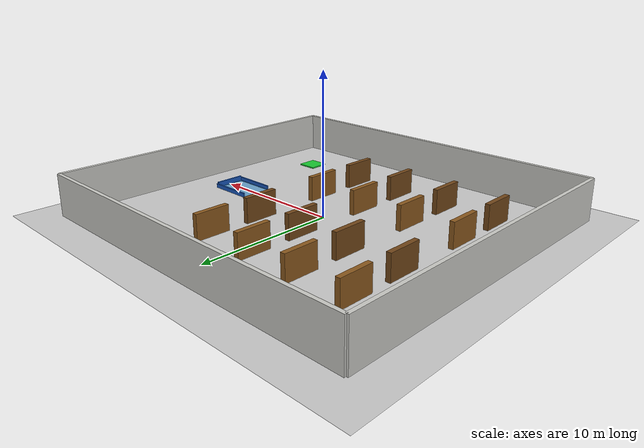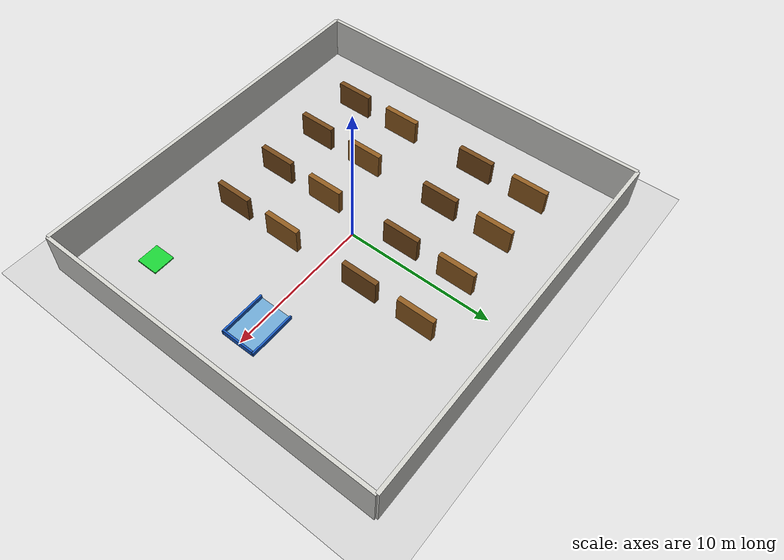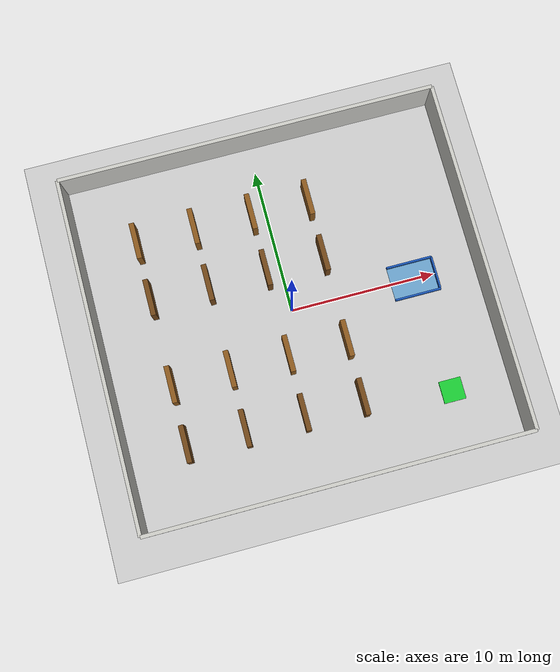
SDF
<?xml version="1.0"?>
<sdf version="1.6">
  <world name="agv_warehouse">

    <physics type="ode">
      <real_time_update_rate>1000.0</real_time_update_rate>
      <max_step_size>0.001</max_step_size>
      <real_time_factor>1</real_time_factor>
      <ode>
        <solver>
          <type>quick</type>
          <iters>150</iters>
          <precon_iters>0</precon_iters>
          <sor>1.400000</sor>
          <use_dynamic_moi_rescaling>1</use_dynamic_moi_rescaling>
        </solver>
      </ode>
    </physics>

    <scene>
      <ambient>0.6 0.6 0.6 1</ambient>
      <background>0.7 0.7 0.7 1</background>
      <shadows>true</shadows>
    </scene>

    <light name="sun_main" type="directional">
      <cast_shadows>true</cast_shadows>
      <pose>0 0 20 0 0 0</pose>
      <diffuse>0.9 0.9 0.9 1</diffuse>
      <specular>0.3 0.3 0.3 1</specular>
      <attenuation><range>1000</range><constant>0.9</constant><linear>0.01</linear><quadratic>0.001</quadratic></attenuation>
      <direction>-0.4 0.2 -0.9</direction>
    </light>

    <light name="light_1" type="point">
      <pose>0 0 8 0 0 0</pose>
      <diffuse>0.7 0.7 0.7 1</diffuse>
      <specular>0.1 0.1 0.1 1</specular>
      <attenuation><range>15</range><constant>0.5</constant><linear>0.01</linear><quadratic>0.001</quadratic></attenuation>
    </light>

    <!-- 地面 -->
    <model name="ground_plane">
      <static>true</static>
      <link name="link">
        <collision name="collision">
          <geometry><plane><normal>0 0 1</normal><size>50 50</size></plane></geometry>
          <surface><friction><ode><mu>100</mu><mu2>50</mu2></ode></friction></surface>
        </collision>
        <visual name="visual">
          <cast_shadows>false</cast_shadows>
          <geometry><plane><normal>0 0 1</normal><size>50 50</size></plane></geometry>
          <material>
            <script>
              <uri>file://media/materials/scripts/gazebo.material</uri>
              <name>Gazebo/Grey</name>
            </script>
          </material>
        </visual>
      </link>
    </model>

    <!-- 四面墙 -->
    <model name="wall_north">
      <static>true</static><pose>0 12 1.5 0 0 0</pose>
      <link name="link">
        <collision name="c"><geometry><box><size>26 0.25 3.0</size></box></geometry></collision>
        <visual name="v"><geometry><box><size>26 0.25 3.0</size></box></geometry>
          <material><ambient>0.8 0.8 0.78 1</ambient></material></visual>
      </link>
    </model>
    <model name="wall_south">
      <static>true</static><pose>0 -12 1.5 0 0 0</pose>
      <link name="link">
        <collision name="c"><geometry><box><size>26 0.25 3.0</size></box></geometry></collision>
        <visual name="v"><geometry><box><size>26 0.25 3.0</size></box></geometry>
          <material><ambient>0.8 0.8 0.78 1</ambient></material></visual>
      </link>
    </model>
    <model name="wall_east">
      <static>true</static><pose>13 0 1.5 0 0 1.5708</pose>
      <link name="link">
        <collision name="c"><geometry><box><size>24 0.25 3.0</size></box></geometry></collision>
        <visual name="v"><geometry><box><size>24 0.25 3.0</size></box></geometry>
          <material><ambient>0.8 0.8 0.78 1</ambient></material></visual>
      </link>
    </model>
    <model name="wall_west">
      <static>true</static><pose>-13 0 1.5 0 0 1.5708</pose>
      <link name="link">
        <collision name="c"><geometry><box><size>24 0.25 3.0</size></box></geometry></collision>
        <visual name="v"><geometry><box><size>24 0.25 3.0</size></box></geometry>
          <material><ambient>0.8 0.8 0.78 1</ambient></material></visual>
      </link>
    </model>

    <!-- ===== 货架组（复现截图中的密集货架布局）===== -->
    <!-- 货架宏: 每排4个货架单元，共4排 -->

    <!-- 排A: y=7 -->
    <model name="shelf_A1"><static>true</static><pose>-9 7 0.9 0 0 0</pose>
      <link name="link">
        <collision name="c"><geometry><box><size>0.35 2.5 1.8</size></box></geometry></collision>
        <visual name="v"><geometry><box><size>0.35 2.5 1.8</size></box></geometry>
          <material><ambient>0.55 0.35 0.12 1</ambient></material></visual>
      </link></model>
    <model name="shelf_A2"><static>true</static><pose>-5 7 0.9 0 0 0</pose>
      <link name="link">
        <collision name="c"><geometry><box><size>0.35 2.5 1.8</size></box></geometry></collision>
        <visual name="v"><geometry><box><size>0.35 2.5 1.8</size></box></geometry>
          <material><ambient>0.55 0.35 0.12 1</ambient></material></visual>
      </link></model>
    <model name="shelf_A3"><static>true</static><pose>-1 7 0.9 0 0 0</pose>
      <link name="link">
        <collision name="c"><geometry><box><size>0.35 2.5 1.8</size></box></geometry></collision>
        <visual name="v"><geometry><box><size>0.35 2.5 1.8</size></box></geometry>
          <material><ambient>0.55 0.35 0.12 1</ambient></material></visual>
      </link></model>
    <model name="shelf_A4"><static>true</static><pose>3 7 0.9 0 0 0</pose>
      <link name="link">
        <collision name="c"><geometry><box><size>0.35 2.5 1.8</size></box></geometry></collision>
        <visual name="v"><geometry><box><size>0.35 2.5 1.8</size></box></geometry>
          <material><ambient>0.55 0.35 0.12 1</ambient></material></visual>
      </link></model>

    <!-- 排B: y=3 -->
    <model name="shelf_B1"><static>true</static><pose>-9 3 0.9 0 0 0</pose>
      <link name="link">
        <collision name="c"><geometry><box><size>0.35 2.5 1.8</size></box></geometry></collision>
        <visual name="v"><geometry><box><size>0.35 2.5 1.8</size></box></geometry>
          <material><ambient>0.45 0.28 0.10 1</ambient></material></visual>
      </link></model>
    <model name="shelf_B2"><static>true</static><pose>-5 3 0.9 0 0 0</pose>
      <link name="link">
        <collision name="c"><geometry><box><size>0.35 2.5 1.8</size></box></geometry></collision>
        <visual name="v"><geometry><box><size>0.35 2.5 1.8</size></box></geometry>
          <material><ambient>0.45 0.28 0.10 1</ambient></material></visual>
      </link></model>
    <model name="shelf_B3"><static>true</static><pose>-1 3 0.9 0 0 0</pose>
      <link name="link">
        <collision name="c"><geometry><box><size>0.35 2.5 1.8</size></box></geometry></collision>
        <visual name="v"><geometry><box><size>0.35 2.5 1.8</size></box></geometry>
          <material><ambient>0.45 0.28 0.10 1</ambient></material></visual>
      </link></model>
    <model name="shelf_B4"><static>true</static><pose>3 3 0.9 0 0 0</pose>
      <link name="link">
        <collision name="c"><geometry><box><size>0.35 2.5 1.8</size></box></geometry></collision>
        <visual name="v"><geometry><box><size>0.35 2.5 1.8</size></box></geometry>
          <material><ambient>0.45 0.28 0.10 1</ambient></material></visual>
      </link></model>

    <!-- 排C: y=-3 -->
    <model name="shelf_C1"><static>true</static><pose>-9 -3 0.9 0 0 0</pose>
      <link name="link">
        <collision name="c"><geometry><box><size>0.35 2.5 1.8</size></box></geometry></collision>
        <visual name="v"><geometry><box><size>0.35 2.5 1.8</size></box></geometry>
          <material><ambient>0.55 0.35 0.12 1</ambient></material></visual>
      </link></model>
    <model name="shelf_C2"><static>true</static><pose>-5 -3 0.9 0 0 0</pose>
      <link name="link">
        <collision name="c"><geometry><box><size>0.35 2.5 1.8</size></box></geometry></collision>
        <visual name="v"><geometry><box><size>0.35 2.5 1.8</size></box></geometry>
          <material><ambient>0.55 0.35 0.12 1</ambient></material></visual>
      </link></model>
    <model name="shelf_C3"><static>true</static><pose>-1 -3 0.9 0 0 0</pose>
      <link name="link">
        <collision name="c"><geometry><box><size>0.35 2.5 1.8</size></box></geometry></collision>
        <visual name="v"><geometry><box><size>0.35 2.5 1.8</size></box></geometry>
          <material><ambient>0.55 0.35 0.12 1</ambient></material></visual>
      </link></model>
    <model name="shelf_C4"><static>true</static><pose>3 -3 0.9 0 0 0</pose>
      <link name="link">
        <collision name="c"><geometry><box><size>0.35 2.5 1.8</size></box></geometry></collision>
        <visual name="v"><geometry><box><size>0.35 2.5 1.8</size></box></geometry>
          <material><ambient>0.55 0.35 0.12 1</ambient></material></visual>
      </link></model>

    <!-- 排D: y=-7 -->
    <model name="shelf_D1"><static>true</static><pose>-9 -7 0.9 0 0 0</pose>
      <link name="link">
        <collision name="c"><geometry><box><size>0.35 2.5 1.8</size></box></geometry></collision>
        <visual name="v"><geometry><box><size>0.35 2.5 1.8</size></box></geometry>
          <material><ambient>0.45 0.28 0.10 1</ambient></material></visual>
      </link></model>
    <model name="shelf_D2"><static>true</static><pose>-5 -7 0.9 0 0 0</pose>
      <link name="link">
        <collision name="c"><geometry><box><size>0.35 2.5 1.8</size></box></geometry></collision>
        <visual name="v"><geometry><box><size>0.35 2.5 1.8</size></box></geometry>
          <material><ambient>0.45 0.28 0.10 1</ambient></material></visual>
      </link></model>
    <model name="shelf_D3"><static>true</static><pose>-1 -7 0.9 0 0 0</pose>
      <link name="link">
        <collision name="c"><geometry><box><size>0.35 2.5 1.8</size></box></geometry></collision>
        <visual name="v"><geometry><box><size>0.35 2.5 1.8</size></box></geometry>
          <material><ambient>0.45 0.28 0.10 1</ambient></material></visual>
      </link></model>
    <model name="shelf_D4"><static>true</static><pose>3 -7 0.9 0 0 0</pose>
      <link name="link">
        <collision name="c"><geometry><box><size>0.35 2.5 1.8</size></box></geometry></collision>
        <visual name="v"><geometry><box><size>0.35 2.5 1.8</size></box></geometry>
          <material><ambient>0.45 0.28 0.10 1</ambient></material></visual>
      </link></model>

    <!-- 出货站台: open dock bay. The center is drivable; side rails mark the bay. -->
    <model name="output_station">
      <static>true</static><pose>8.6 0 0 0 0 0</pose>
      <link name="dock_floor">
        <visual name="v">
          <pose>0 0 0.025 0 0 0</pose>
          <geometry><box><size>3.2 2.2 0.05</size></box></geometry>
          <material><ambient>0.15 0.55 0.85 0.55</ambient></material>
        </visual>
      </link>
      <link name="north_rail">
        <pose>0 1.15 0.15 0 0 0</pose>
        <collision name="c"><geometry><box><size>3.2 0.12 0.30</size></box></geometry></collision>
        <visual name="v"><geometry><box><size>3.2 0.12 0.30</size></box></geometry>
          <material><ambient>0.1 0.35 0.75 1</ambient></material></visual>
      </link>
      <link name="south_rail">
        <pose>0 -1.15 0.15 0 0 0</pose>
        <collision name="c"><geometry><box><size>3.2 0.12 0.30</size></box></geometry></collision>
        <visual name="v"><geometry><box><size>3.2 0.12 0.30</size></box></geometry>
          <material><ambient>0.1 0.35 0.75 1</ambient></material></visual>
      </link>
      <link name="back_stop">
        <pose>1.55 0 0.20 0 0 0</pose>
        <collision name="c"><geometry><box><size>0.12 2.2 0.40</size></box></geometry></collision>
        <visual name="v"><geometry><box><size>0.12 2.2 0.40</size></box></geometry>
          <material><ambient>0.1 0.35 0.75 1</ambient></material></visual>
      </link>
    </model>

    <!-- 充电桩 -->
    <model name="charging_pad">
      <static>true</static><pose>9 -8 0.05 0 0 0</pose>
      <link name="link">
        <visual name="v"><geometry><box><size>1.5 1.5 0.1</size></box></geometry>
          <material><ambient>0.1 0.8 0.2 1</ambient></material></visual>
        <collision name="c"><geometry><box><size>1.5 1.5 0.1</size></box></geometry></collision>
      </link>
    </model>

  </world>
</sdf>
